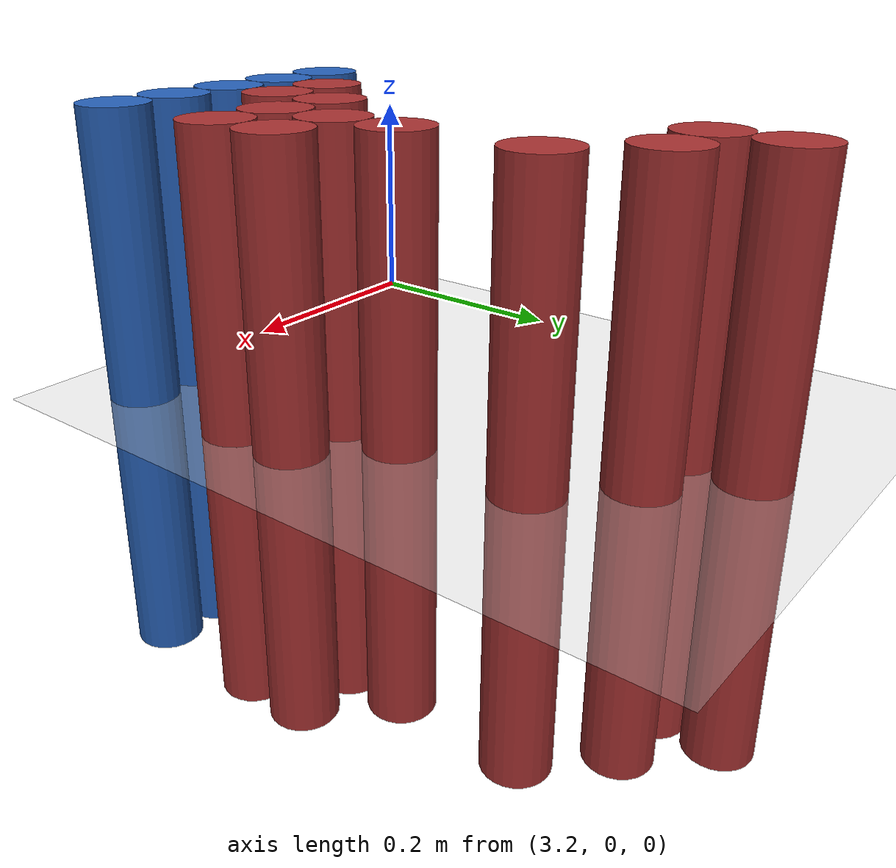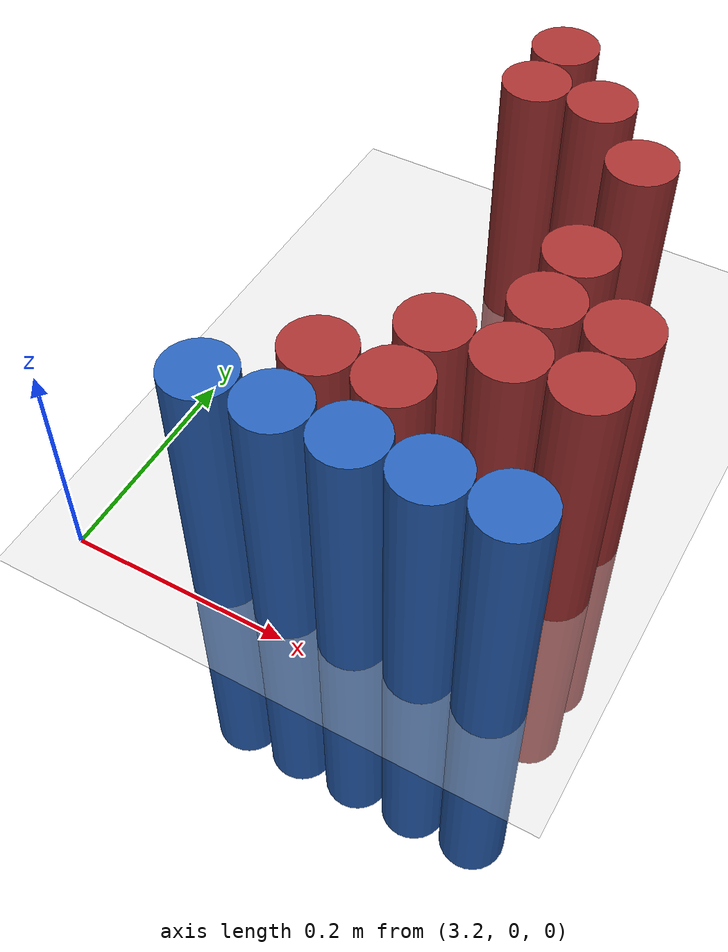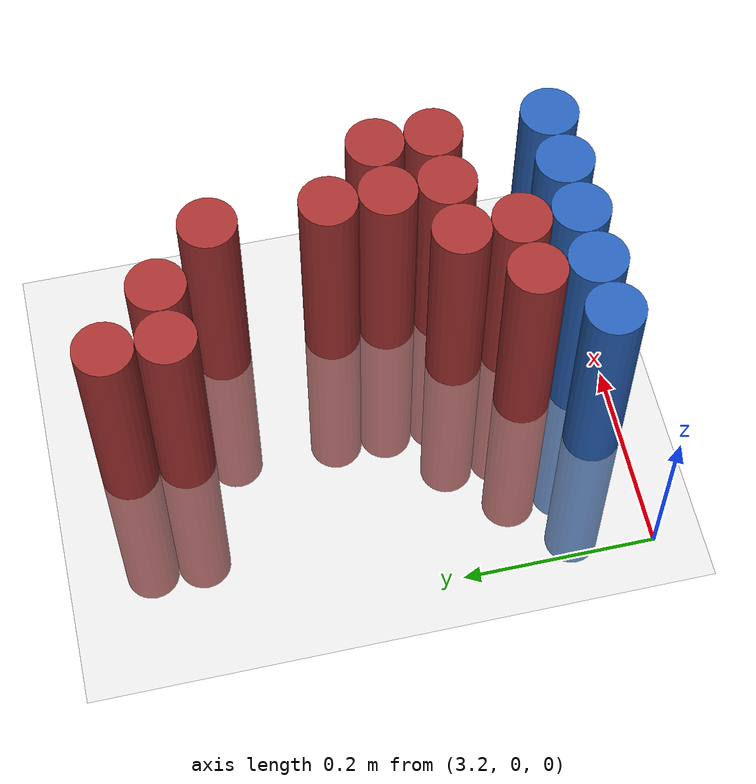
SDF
<sdf version="1.6">
 <world name="default">
  <model name="ground_plane">
   <static>1</static>
   <link name="link">
    <collision name="collision">
     <geometry><plane><normal>0 0 1</normal><size>100 100</size></plane></geometry>
     <surface><friction><ode><mu>100</mu><mu2>50</mu2></ode></friction></surface>
    </collision>
    <visual name="visual">
     <cast_shadows>0</cast_shadows>
     <geometry><plane><normal>0 0 1</normal><size>100 100</size></plane></geometry>
     <material>
      <script><uri>file://media/materials/scripts/gazebo.material</uri><name>Gazebo/Grey</name></script>
     </material>
    </visual>
   </link>
  </model>
  <model name="unit_cylinder_188">
   <static>1</static>
   <pose>3.390000 0.510000 0.000000 0.000000 0.000000 0.000000</pose>
   <link name="link">
    <inertial>
     <mass>1</mass>
     <inertia><ixx>0.145833</ixx><ixy>0</ixy><ixz>0</ixz><iyy>0.145833</iyy><iyz>0</iyz><izz>0.125</izz></inertia>
    </inertial>
    <collision name="collision">
     <geometry><cylinder><radius>0.030000</radius><length>0.5</length></cylinder></geometry>
    </collision>
    <visual name="visual">
     <geometry><cylinder><radius>0.030000</radius><length>0.5</length></cylinder></geometry>
     <material>
      <ambient>0.648000 0.192000 0.192000 1</ambient>
      <diffuse>0.648000 0.192000 0.192000 1</diffuse>
     </material>
     <material>
      <script><name>Gazebo/Grey</name><uri>file://media/materials/scripts/gazebo.material</uri></script>
     </material>
    </visual>
   </link>
  </model>
  <model name="unit_cylinder_190">
   <static>1</static>
   <pose>3.390000 0.450000 0.000000 0.000000 0.000000 0.000000</pose>
   <link name="link">
    <inertial>
     <mass>1</mass>
     <inertia><ixx>0.145833</ixx><ixy>0</ixy><ixz>0</ixz><iyy>0.145833</iyy><iyz>0</iyz><izz>0.125</izz></inertia>
    </inertial>
    <collision name="collision">
     <geometry><cylinder><radius>0.030000</radius><length>0.5</length></cylinder></geometry>
    </collision>
    <visual name="visual">
     <geometry><cylinder><radius>0.030000</radius><length>0.5</length></cylinder></geometry>
     <material>
      <ambient>0.648000 0.192000 0.192000 1</ambient>
      <diffuse>0.648000 0.192000 0.192000 1</diffuse>
     </material>
     <material>
      <script><name>Gazebo/Grey</name><uri>file://media/materials/scripts/gazebo.material</uri></script>
     </material>
    </visual>
   </link>
  </model>
  <model name="unit_cylinder_191">
   <static>1</static>
   <pose>3.450000 0.450000 0.000000 0.000000 0.000000 0.000000</pose>
   <link name="link">
    <inertial>
     <mass>1</mass>
     <inertia><ixx>0.145833</ixx><ixy>0</ixy><ixz>0</ixz><iyy>0.145833</iyy><iyz>0</iyz><izz>0.125</izz></inertia>
    </inertial>
    <collision name="collision">
     <geometry><cylinder><radius>0.030000</radius><length>0.5</length></cylinder></geometry>
    </collision>
    <visual name="visual">
     <geometry><cylinder><radius>0.030000</radius><length>0.5</length></cylinder></geometry>
     <material>
      <ambient>0.648000 0.192000 0.192000 1</ambient>
      <diffuse>0.648000 0.192000 0.192000 1</diffuse>
     </material>
     <material>
      <script><name>Gazebo/Grey</name><uri>file://media/materials/scripts/gazebo.material</uri></script>
     </material>
    </visual>
   </link>
  </model>
  <model name="unit_cylinder_199">
   <static>1</static>
   <pose>3.510000 0.390000 0.000000 0.000000 0.000000 0.000000</pose>
   <link name="link">
    <inertial>
     <mass>1</mass>
     <inertia><ixx>0.145833</ixx><ixy>0</ixy><ixz>0</ixz><iyy>0.145833</iyy><iyz>0</iyz><izz>0.125</izz></inertia>
    </inertial>
    <collision name="collision">
     <geometry><cylinder><radius>0.030000</radius><length>0.5</length></cylinder></geometry>
    </collision>
    <visual name="visual">
     <geometry><cylinder><radius>0.030000</radius><length>0.5</length></cylinder></geometry>
     <material>
      <ambient>0.648000 0.192000 0.192000 1</ambient>
      <diffuse>0.648000 0.192000 0.192000 1</diffuse>
     </material>
     <material>
      <script><name>Gazebo/Grey</name><uri>file://media/materials/scripts/gazebo.material</uri></script>
     </material>
    </visual>
   </link>
  </model>
  <model name="unit_cylinder_206">
   <static>1</static>
   <pose>3.510000 0.270000 0.000000 0.000000 0.000000 0.000000</pose>
   <link name="link">
    <inertial>
     <mass>1</mass>
     <inertia><ixx>0.145833</ixx><ixy>0</ixy><ixz>0</ixz><iyy>0.145833</iyy><iyz>0</iyz><izz>0.125</izz></inertia>
    </inertial>
    <collision name="collision">
     <geometry><cylinder><radius>0.030000</radius><length>0.5</length></cylinder></geometry>
    </collision>
    <visual name="visual">
     <geometry><cylinder><radius>0.030000</radius><length>0.5</length></cylinder></geometry>
     <material>
      <ambient>0.648000 0.192000 0.192000 1</ambient>
      <diffuse>0.648000 0.192000 0.192000 1</diffuse>
     </material>
     <material>
      <script><name>Gazebo/Grey</name><uri>file://media/materials/scripts/gazebo.material</uri></script>
     </material>
    </visual>
   </link>
  </model>
  <model name="unit_cylinder_211">
   <static>1</static>
   <pose>3.510000 0.210000 0.000000 0.000000 0.000000 0.000000</pose>
   <link name="link">
    <inertial>
     <mass>1</mass>
     <inertia><ixx>0.145833</ixx><ixy>0</ixy><ixz>0</ixz><iyy>0.145833</iyy><iyz>0</iyz><izz>0.125</izz></inertia>
    </inertial>
    <collision name="collision">
     <geometry><cylinder><radius>0.030000</radius><length>0.5</length></cylinder></geometry>
    </collision>
    <visual name="visual">
     <geometry><cylinder><radius>0.030000</radius><length>0.5</length></cylinder></geometry>
     <material>
      <ambient>0.648000 0.192000 0.192000 1</ambient>
      <diffuse>0.648000 0.192000 0.192000 1</diffuse>
     </material>
     <material>
      <script><name>Gazebo/Grey</name><uri>file://media/materials/scripts/gazebo.material</uri></script>
     </material>
    </visual>
   </link>
  </model>
  <model name="unit_cylinder_212">
   <static>1</static>
   <pose>3.570000 0.210000 0.000000 0.000000 0.000000 0.000000</pose>
   <link name="link">
    <inertial>
     <mass>1</mass>
     <inertia><ixx>0.145833</ixx><ixy>0</ixy><ixz>0</ixz><iyy>0.145833</iyy><iyz>0</iyz><izz>0.125</izz></inertia>
    </inertial>
    <collision name="collision">
     <geometry><cylinder><radius>0.030000</radius><length>0.5</length></cylinder></geometry>
    </collision>
    <visual name="visual">
     <geometry><cylinder><radius>0.030000</radius><length>0.5</length></cylinder></geometry>
     <material>
      <ambient>0.648000 0.192000 0.192000 1</ambient>
      <diffuse>0.648000 0.192000 0.192000 1</diffuse>
     </material>
     <material>
      <script><name>Gazebo/Grey</name><uri>file://media/materials/scripts/gazebo.material</uri></script>
     </material>
    </visual>
   </link>
  </model>
  <model name="unit_cylinder_220">
   <static>1</static>
   <pose>3.450000 0.150000 0.000000 0.000000 0.000000 0.000000</pose>
   <link name="link">
    <inertial>
     <mass>1</mass>
     <inertia><ixx>0.145833</ixx><ixy>0</ixy><ixz>0</ixz><iyy>0.145833</iyy><iyz>0</iyz><izz>0.125</izz></inertia>
    </inertial>
    <collision name="collision">
     <geometry><cylinder><radius>0.030000</radius><length>0.5</length></cylinder></geometry>
    </collision>
    <visual name="visual">
     <geometry><cylinder><radius>0.030000</radius><length>0.5</length></cylinder></geometry>
     <material>
      <ambient>0.648000 0.192000 0.192000 1</ambient>
      <diffuse>0.648000 0.192000 0.192000 1</diffuse>
     </material>
     <material>
      <script><name>Gazebo/Grey</name><uri>file://media/materials/scripts/gazebo.material</uri></script>
     </material>
    </visual>
   </link>
  </model>
  <model name="unit_cylinder_221">
   <static>1</static>
   <pose>3.510000 0.150000 0.000000 0.000000 0.000000 0.000000</pose>
   <link name="link">
    <inertial>
     <mass>1</mass>
     <inertia><ixx>0.145833</ixx><ixy>0</ixy><ixz>0</ixz><iyy>0.145833</iyy><iyz>0</iyz><izz>0.125</izz></inertia>
    </inertial>
    <collision name="collision">
     <geometry><cylinder><radius>0.030000</radius><length>0.5</length></cylinder></geometry>
    </collision>
    <visual name="visual">
     <geometry><cylinder><radius>0.030000</radius><length>0.5</length></cylinder></geometry>
     <material>
      <ambient>0.648000 0.192000 0.192000 1</ambient>
      <diffuse>0.648000 0.192000 0.192000 1</diffuse>
     </material>
     <material>
      <script><name>Gazebo/Grey</name><uri>file://media/materials/scripts/gazebo.material</uri></script>
     </material>
    </visual>
   </link>
  </model>
  <model name="unit_cylinder_222">
   <static>1</static>
   <pose>3.570000 0.150000 0.000000 0.000000 0.000000 0.000000</pose>
   <link name="link">
    <inertial>
     <mass>1</mass>
     <inertia><ixx>0.145833</ixx><ixy>0</ixy><ixz>0</ixz><iyy>0.145833</iyy><iyz>0</iyz><izz>0.125</izz></inertia>
    </inertial>
    <collision name="collision">
     <geometry><cylinder><radius>0.030000</radius><length>0.5</length></cylinder></geometry>
    </collision>
    <visual name="visual">
     <geometry><cylinder><radius>0.030000</radius><length>0.5</length></cylinder></geometry>
     <material>
      <ambient>0.648000 0.192000 0.192000 1</ambient>
      <diffuse>0.648000 0.192000 0.192000 1</diffuse>
     </material>
     <material>
      <script><name>Gazebo/Grey</name><uri>file://media/materials/scripts/gazebo.material</uri></script>
     </material>
    </visual>
   </link>
  </model>
  <model name="unit_cylinder_237">
   <static>1</static>
   <pose>3.390000 0.090000 0.000000 0.000000 0.000000 0.000000</pose>
   <link name="link">
    <inertial>
     <mass>1</mass>
     <inertia><ixx>0.145833</ixx><ixy>0</ixy><ixz>0</ixz><iyy>0.145833</iyy><iyz>0</iyz><izz>0.125</izz></inertia>
    </inertial>
    <collision name="collision">
     <geometry><cylinder><radius>0.030000</radius><length>0.5</length></cylinder></geometry>
    </collision>
    <visual name="visual">
     <geometry><cylinder><radius>0.030000</radius><length>0.5</length></cylinder></geometry>
     <material>
      <ambient>0.648000 0.192000 0.192000 1</ambient>
      <diffuse>0.648000 0.192000 0.192000 1</diffuse>
     </material>
     <material>
      <script><name>Gazebo/Grey</name><uri>file://media/materials/scripts/gazebo.material</uri></script>
     </material>
    </visual>
   </link>
  </model>
  <model name="unit_cylinder_238">
   <static>1</static>
   <pose>3.450000 0.090000 0.000000 0.000000 0.000000 0.000000</pose>
   <link name="link">
    <inertial>
     <mass>1</mass>
     <inertia><ixx>0.145833</ixx><ixy>0</ixy><ixz>0</ixz><iyy>0.145833</iyy><iyz>0</iyz><izz>0.125</izz></inertia>
    </inertial>
    <collision name="collision">
     <geometry><cylinder><radius>0.030000</radius><length>0.5</length></cylinder></geometry>
    </collision>
    <visual name="visual">
     <geometry><cylinder><radius>0.030000</radius><length>0.5</length></cylinder></geometry>
     <material>
      <ambient>0.648000 0.192000 0.192000 1</ambient>
      <diffuse>0.648000 0.192000 0.192000 1</diffuse>
     </material>
     <material>
      <script><name>Gazebo/Grey</name><uri>file://media/materials/scripts/gazebo.material</uri></script>
     </material>
    </visual>
   </link>
  </model>
  <model name="unit_cylinder_263">
   <static>1</static>
   <pose>3.330000 0.030000 0.000000 0.000000 0.000000 0.000000</pose>
   <link name="link">
    <inertial>
     <mass>1</mass>
     <inertia><ixx>0.145833</ixx><ixy>0</ixy><ixz>0</ixz><iyy>0.145833</iyy><iyz>0</iyz><izz>0.125</izz></inertia>
    </inertial>
    <collision name="collision">
     <geometry><cylinder><radius>0.030000</radius><length>0.5</length></cylinder></geometry>
    </collision>
    <visual name="visual">
     <geometry><cylinder><radius>0.030000</radius><length>0.5</length></cylinder></geometry>
     <material>
      <ambient>0.152000 0.379000 0.720000 1</ambient>
      <diffuse>0.152000 0.379000 0.720000 1</diffuse>
     </material>
     <material>
      <script><name>Gazebo/Grey</name><uri>file://media/materials/scripts/gazebo.material</uri></script>
     </material>
    </visual>
   </link>
  </model>
  <model name="unit_cylinder_264">
   <static>1</static>
   <pose>3.390000 0.030000 0.000000 0.000000 0.000000 0.000000</pose>
   <link name="link">
    <inertial>
     <mass>1</mass>
     <inertia><ixx>0.145833</ixx><ixy>0</ixy><ixz>0</ixz><iyy>0.145833</iyy><iyz>0</iyz><izz>0.125</izz></inertia>
    </inertial>
    <collision name="collision">
     <geometry><cylinder><radius>0.030000</radius><length>0.5</length></cylinder></geometry>
    </collision>
    <visual name="visual">
     <geometry><cylinder><radius>0.030000</radius><length>0.5</length></cylinder></geometry>
     <material>
      <ambient>0.152000 0.379000 0.720000 1</ambient>
      <diffuse>0.152000 0.379000 0.720000 1</diffuse>
     </material>
     <material>
      <script><name>Gazebo/Grey</name><uri>file://media/materials/scripts/gazebo.material</uri></script>
     </material>
    </visual>
   </link>
  </model>
  <model name="unit_cylinder_265">
   <static>1</static>
   <pose>3.450000 0.030000 0.000000 0.000000 0.000000 0.000000</pose>
   <link name="link">
    <inertial>
     <mass>1</mass>
     <inertia><ixx>0.145833</ixx><ixy>0</ixy><ixz>0</ixz><iyy>0.145833</iyy><iyz>0</iyz><izz>0.125</izz></inertia>
    </inertial>
    <collision name="collision">
     <geometry><cylinder><radius>0.030000</radius><length>0.5</length></cylinder></geometry>
    </collision>
    <visual name="visual">
     <geometry><cylinder><radius>0.030000</radius><length>0.5</length></cylinder></geometry>
     <material>
      <ambient>0.152000 0.379000 0.720000 1</ambient>
      <diffuse>0.152000 0.379000 0.720000 1</diffuse>
     </material>
     <material>
      <script><name>Gazebo/Grey</name><uri>file://media/materials/scripts/gazebo.material</uri></script>
     </material>
    </visual>
   </link>
  </model>
  <model name="unit_cylinder_266">
   <static>1</static>
   <pose>3.510000 0.030000 0.000000 0.000000 0.000000 0.000000</pose>
   <link name="link">
    <inertial>
     <mass>1</mass>
     <inertia><ixx>0.145833</ixx><ixy>0</ixy><ixz>0</ixz><iyy>0.145833</iyy><iyz>0</iyz><izz>0.125</izz></inertia>
    </inertial>
    <collision name="collision">
     <geometry><cylinder><radius>0.030000</radius><length>0.5</length></cylinder></geometry>
    </collision>
    <visual name="visual">
     <geometry><cylinder><radius>0.030000</radius><length>0.5</length></cylinder></geometry>
     <material>
      <ambient>0.152000 0.379000 0.720000 1</ambient>
      <diffuse>0.152000 0.379000 0.720000 1</diffuse>
     </material>
     <material>
      <script><name>Gazebo/Grey</name><uri>file://media/materials/scripts/gazebo.material</uri></script>
     </material>
    </visual>
   </link>
  </model>
  <model name="unit_cylinder_267">
   <static>1</static>
   <pose>3.570000 0.030000 0.000000 0.000000 0.000000 0.000000</pose>
   <link name="link">
    <inertial>
     <mass>1</mass>
     <inertia><ixx>0.145833</ixx><ixy>0</ixy><ixz>0</ixz><iyy>0.145833</iyy><iyz>0</iyz><izz>0.125</izz></inertia>
    </inertial>
    <collision name="collision">
     <geometry><cylinder><radius>0.030000</radius><length>0.5</length></cylinder></geometry>
    </collision>
    <visual name="visual">
     <geometry><cylinder><radius>0.030000</radius><length>0.5</length></cylinder></geometry>
     <material>
      <ambient>0.152000 0.379000 0.720000 1</ambient>
      <diffuse>0.152000 0.379000 0.720000 1</diffuse>
     </material>
     <material>
      <script><name>Gazebo/Grey</name><uri>file://media/materials/scripts/gazebo.material</uri></script>
     </material>
    </visual>
   </link>
  </model>
 </world>
</sdf>
